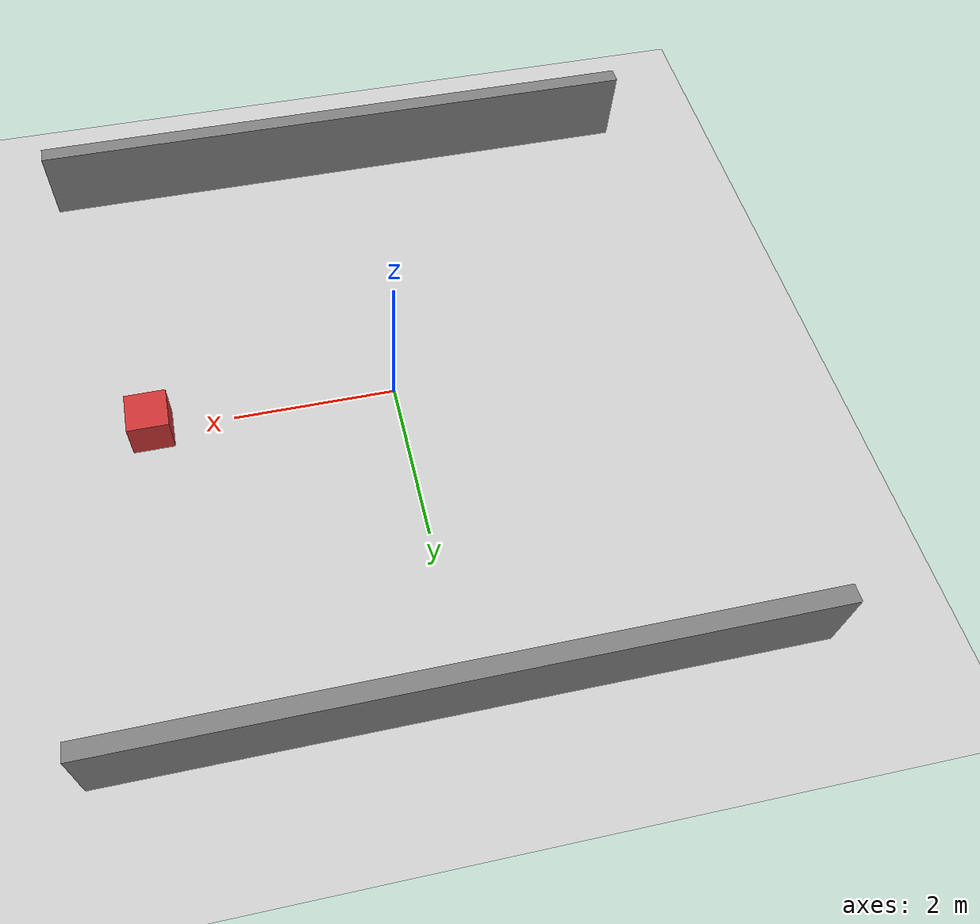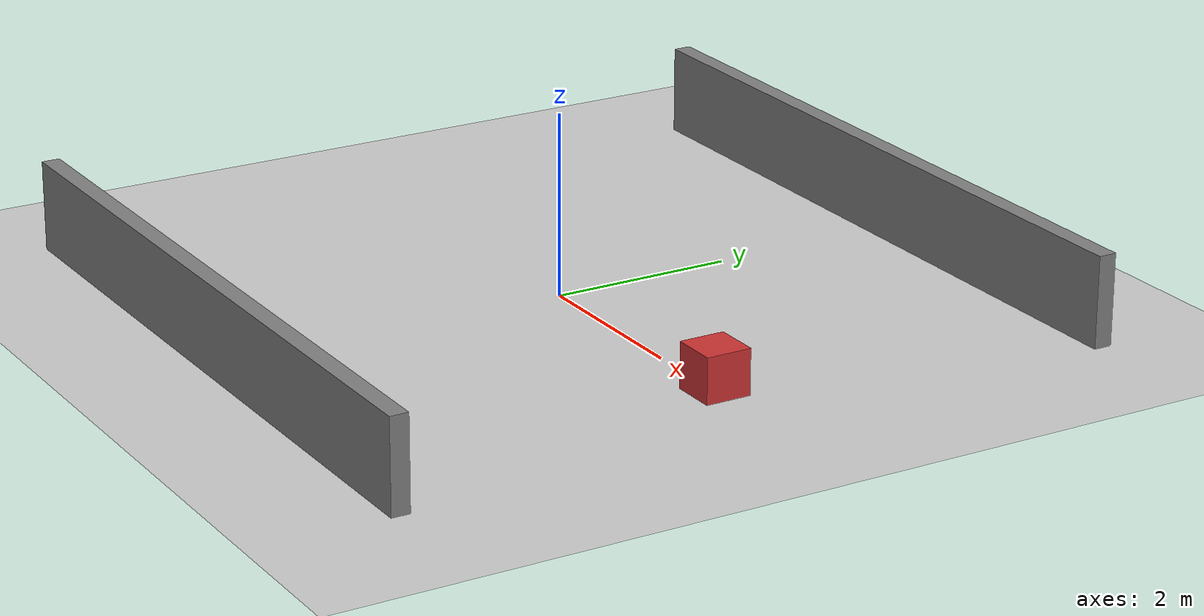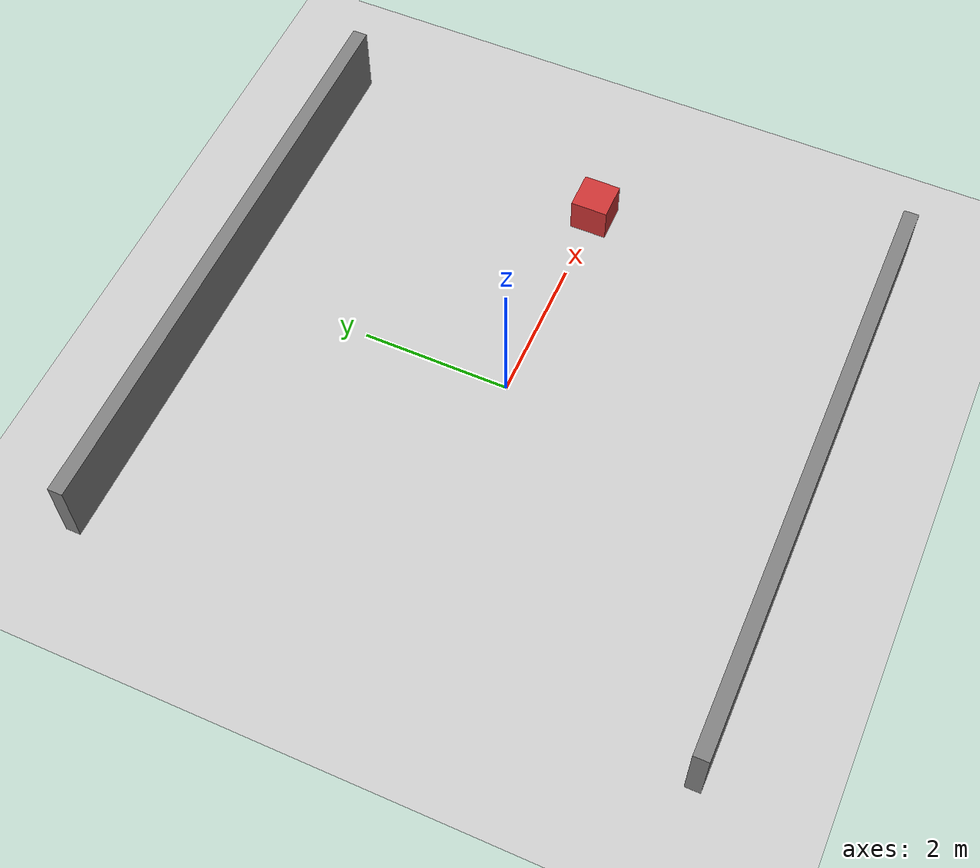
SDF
<?xml version="1.0"?>
<sdf version="1.6">
  <world name="warehouse">
    <include><uri>model://sun</uri></include>
    <include><uri>model://ground_plane</uri></include>
    <physics type="ode">
      <real_time_update_rate>1000.0</real_time_update_rate>
      <max_step_size>0.001</max_step_size>
    </physics>

    <!-- 북쪽 벽 -->
    <model name="wall_north">
      <static>true</static>
      <pose>0 4 0.5 0 0 0</pose>
      <link name="link">
        <collision name="col"><geometry><box><size>8 0.2 1</size></box></geometry></collision>
        <visual name="vis">
          <geometry><box><size>8 0.2 1</size></box></geometry>
          <material><ambient>0.5 0.5 0.5 1</ambient></material>
        </visual>
      </link>
    </model>

    <!-- 남쪽 벽 -->
    <model name="wall_south">
      <static>true</static>
      <pose>0 -4 0.5 0 0 0</pose>
      <link name="link">
        <collision name="col"><geometry><box><size>8 0.2 1</size></box></geometry></collision>
        <visual name="vis">
          <geometry><box><size>8 0.2 1</size></box></geometry>
          <material><ambient>0.5 0.5 0.5 1</ambient></material>
        </visual>
      </link>
    </model>

    <!-- 고정 장애물 박스 -->
    <model name="obstacle_box">
      <static>true</static>
      <pose>3 0 0.25 0 0 0</pose>
      <link name="link">
        <collision name="col"><geometry><box><size>0.5 0.5 0.5</size></box></geometry></collision>
        <visual name="vis">
          <geometry><box><size>0.5 0.5 0.5</size></box></geometry>
          <material><ambient>0.8 0.2 0.2 1</ambient></material>
        </visual>
      </link>
    </model></world>
</sdf>
